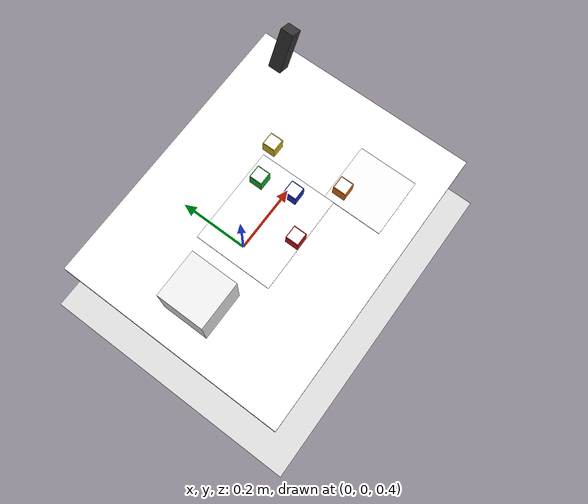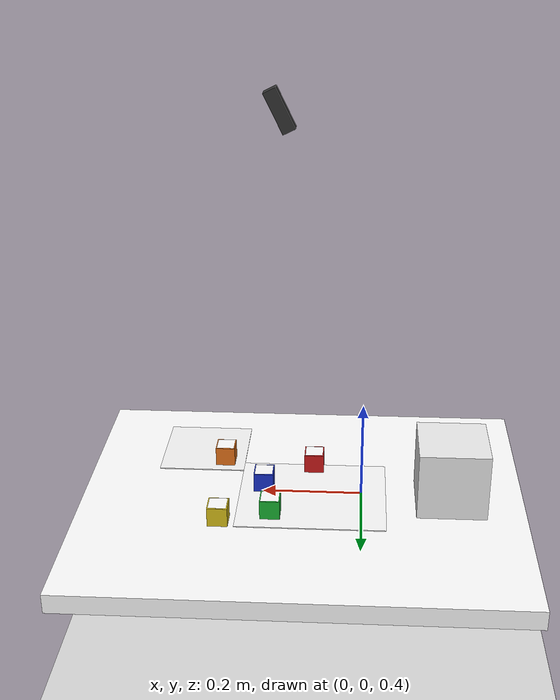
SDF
<?xml version="1.0" ?>
<sdf version="1.9">
  <world name="mycobot_pick_world">
    <physics name="physics" type="ignored">
      <max_step_size>0.004</max_step_size>
      <real_time_factor>1.0</real_time_factor>
    </physics>

    <plugin filename="gz-sim-physics-system" name="gz::sim::systems::Physics"/>
    <plugin filename="gz-sim-user-commands-system" name="gz::sim::systems::UserCommands"/>
    <plugin filename="gz-sim-scene-broadcaster-system" name="gz::sim::systems::SceneBroadcaster"/>
    <plugin filename="gz-sim-sensors-system" name="gz::sim::systems::Sensors">
      <render_engine>ogre2</render_engine>
    </plugin>

    <light type="directional" name="sun">
      <cast_shadows>true</cast_shadows>
      <pose>0 0 10 0 0 0</pose>
      <diffuse>0.95 0.95 0.95 1.0</diffuse>
      <specular>0.3 0.3 0.3 1.0</specular>
      <direction>-0.3 0.1 -1.0</direction>
    </light>

    <model name="ground_plane">
      <static>true</static>
      <link name="link">
        <collision name="collision">
          <geometry>
            <plane>
              <normal>0 0 1</normal>
              <size>5 5</size>
            </plane>
          </geometry>
        </collision>
        <visual name="visual">
          <geometry>
            <plane>
              <normal>0 0 1</normal>
              <size>5 5</size>
            </plane>
          </geometry>
          <material>
            <ambient>0.85 0.85 0.85 1</ambient>
            <diffuse>0.85 0.85 0.85 1</diffuse>
          </material>
        </visual>
      </link>
    </model>

    <model name="workbench">
      <static>true</static>
      <pose>0.12 0.0 0.37 0 0 0</pose>
      <link name="table_link">
        <collision name="table_collision">
          <geometry>
            <box>
              <size>0.90 0.70 0.04</size>
            </box>
          </geometry>
        </collision>
        <visual name="table_visual">
          <geometry>
            <box>
              <size>0.90 0.70 0.04</size>
            </box>
          </geometry>
          <material>
            <ambient>1 1 1 1</ambient>
            <diffuse>1 1 1 1</diffuse>
          </material>
        </visual>
      </link>
    </model>

    <model name="robot_pedestal">
      <static>true</static>
      <pose>-0.18 0.0 0.44 0 0 0</pose>
      <link name="pedestal_link">
        <collision name="pedestal_collision">
          <geometry>
            <box>
              <size>0.14 0.14 0.18</size>
            </box>
          </geometry>
        </collision>
        <visual name="pedestal_visual">
          <geometry>
            <box>
              <size>0.14 0.14 0.18</size>
            </box>
          </geometry>
          <material>
            <ambient>0.92 0.92 0.92 1</ambient>
            <diffuse>0.92 0.92 0.92 1</diffuse>
          </material>
        </visual>
      </link>
    </model>

    <model name="pick_zone">
      <static>true</static>
      <pose>0.10 0.0 0.391 0 0 0</pose>
      <link name="pick_zone_link">
        <visual name="pick_zone_visual">
          <geometry>
            <box>
              <size>0.30 0.24 0.002</size>
            </box>
          </geometry>
          <material>
            <ambient>0.98 0.98 0.98 1</ambient>
            <diffuse>0.98 0.98 0.98 1</diffuse>
          </material>
        </visual>
      </link>
    </model>

    <model name="place_zone">
      <static>true</static>
      <pose>0.34 -0.18 0.391 0 0 0</pose>
      <link name="place_zone_link">
        <visual name="place_zone_visual">
          <geometry>
            <box>
              <size>0.18 0.18 0.002</size>
            </box>
          </geometry>
          <material>
            <ambient>0.96 0.96 0.96 1</ambient>
            <diffuse>0.96 0.96 0.96 1</diffuse>
          </material>
        </visual>
      </link>
    </model>

    <model name="realsense_camera">
      <static>true</static>
      <pose>0.16 0.0 1.18 0 1.12 3.14159</pose>
      <link name="camera_link">
        <sensor name="realsense_rgbd" type="rgbd_camera">
          <update_rate>20</update_rate>
          <always_on>true</always_on>
          <topic>realsense_rgbd</topic>
          <camera>
            <horizontal_fov>1.05</horizontal_fov>
            <image>
              <width>640</width>
              <height>480</height>
              <format>R8G8B8</format>
            </image>
            <clip>
              <near>0.05</near>
              <far>2.0</far>
            </clip>
          </camera>
        </sensor>
        <visual name="camera_body">
          <geometry>
            <box>
              <size>0.08 0.025 0.025</size>
            </box>
          </geometry>
          <material>
            <ambient>0.2 0.2 0.2 1</ambient>
            <diffuse>0.2 0.2 0.2 1</diffuse>
          </material>
        </visual>
      </link>
    </model>

    <model name="red_block">
      <pose>0.10 -0.10 0.417 0 0 0</pose>
      <link name="link">
        <inertial>
          <mass>0.02</mass>
          <inertia>
            <ixx>0.00001</ixx><ixy>0</ixy><ixz>0</ixz>
            <iyy>0.00001</iyy><iyz>0</iyz><izz>0.00001</izz>
          </inertia>
        </inertial>
        <collision name="collision">
          <geometry><box><size>0.04 0.04 0.04</size></box></geometry>
        </collision>
        <visual name="visual">
          <geometry><box><size>0.04 0.04 0.04</size></box></geometry>
          <material><ambient>0.8 0.1 0.1 1</ambient><diffuse>0.8 0.1 0.1 1</diffuse></material>
        </visual>
        <visual name="marker_visual">
          <pose>0 0 0.0206 0 0 0</pose>
          <cast_shadows>false</cast_shadows>
          <geometry>
            <plane>
              <normal>0 0 1</normal>
              <size>0.036 0.036</size>
            </plane>
          </geometry>
          <material>
            <ambient>1 1 1 1</ambient>
            <diffuse>1 1 1 1</diffuse>
            <pbr>
              <metal>
                <albedo_map>aruco_marker_0.png</albedo_map>
                <roughness>1.0</roughness>
                <metalness>0.0</metalness>
              </metal>
            </pbr>
          </material>
        </visual>
      </link>
    </model>
    <model name="green_block">
      <pose>0.18 0.08 0.417 0 0 0</pose>
      <link name="link">
        <inertial>
          <mass>0.02</mass>
          <inertia>
            <ixx>0.00001</ixx><ixy>0</ixy><ixz>0</ixz>
            <iyy>0.00001</iyy><iyz>0</iyz><izz>0.00001</izz>
          </inertia>
        </inertial>
        <collision name="collision">
          <geometry><box><size>0.04 0.04 0.04</size></box></geometry>
        </collision>
        <visual name="visual">
          <geometry><box><size>0.04 0.04 0.04</size></box></geometry>
          <material><ambient>0.1 0.7 0.2 1</ambient><diffuse>0.1 0.7 0.2 1</diffuse></material>
        </visual>
        <visual name="marker_visual">
          <pose>0 0 0.0206 0 0 0</pose>
          <cast_shadows>false</cast_shadows>
          <geometry>
            <plane>
              <normal>0 0 1</normal>
              <size>0.036 0.036</size>
            </plane>
          </geometry>
          <material>
            <ambient>1 1 1 1</ambient>
            <diffuse>1 1 1 1</diffuse>
            <pbr>
              <metal>
                <albedo_map>aruco_marker_1.png</albedo_map>
                <roughness>1.0</roughness>
                <metalness>0.0</metalness>
              </metal>
            </pbr>
          </material>
        </visual>
      </link>
    </model>
    <model name="blue_block">
      <pose>0.20 -0.02 0.417 0 0 0</pose>
      <link name="link">
        <inertial>
          <mass>0.02</mass>
          <inertia>
            <ixx>0.00001</ixx><ixy>0</ixy><ixz>0</ixz>
            <iyy>0.00001</iyy><iyz>0</iyz><izz>0.00001</izz>
          </inertia>
        </inertial>
        <collision name="collision">
          <geometry><box><size>0.04 0.04 0.04</size></box></geometry>
        </collision>
        <visual name="visual">
          <geometry><box><size>0.04 0.04 0.04</size></box></geometry>
          <material><ambient>0.1 0.2 0.8 1</ambient><diffuse>0.1 0.2 0.8 1</diffuse></material>
        </visual>
        <visual name="marker_visual">
          <pose>0 0 0.0206 0 0 0</pose>
          <cast_shadows>false</cast_shadows>
          <geometry>
            <plane>
              <normal>0 0 1</normal>
              <size>0.036 0.036</size>
            </plane>
          </geometry>
          <material>
            <ambient>1 1 1 1</ambient>
            <diffuse>1 1 1 1</diffuse>
            <pbr>
              <metal>
                <albedo_map>aruco_marker_2.png</albedo_map>
                <roughness>1.0</roughness>
                <metalness>0.0</metalness>
              </metal>
            </pbr>
          </material>
        </visual>
      </link>
    </model>
    <model name="yellow_block">
      <pose>0.28 0.11 0.417 0 0 0</pose>
      <link name="link">
        <inertial>
          <mass>0.02</mass>
          <inertia>
            <ixx>0.00001</ixx><ixy>0</ixy><ixz>0</ixz>
            <iyy>0.00001</iyy><iyz>0</iyz><izz>0.00001</izz>
          </inertia>
        </inertial>
        <collision name="collision">
          <geometry><box><size>0.04 0.04 0.04</size></box></geometry>
        </collision>
        <visual name="visual">
          <geometry><box><size>0.04 0.04 0.04</size></box></geometry>
          <material><ambient>0.85 0.75 0.1 1</ambient><diffuse>0.85 0.75 0.1 1</diffuse></material>
        </visual>
        <visual name="marker_visual">
          <pose>0 0 0.0206 0 0 0</pose>
          <cast_shadows>false</cast_shadows>
          <geometry>
            <plane>
              <normal>0 0 1</normal>
              <size>0.036 0.036</size>
            </plane>
          </geometry>
          <material>
            <ambient>1 1 1 1</ambient>
            <diffuse>1 1 1 1</diffuse>
            <pbr>
              <metal>
                <albedo_map>aruco_marker_3.png</albedo_map>
                <roughness>1.0</roughness>
                <metalness>0.0</metalness>
              </metal>
            </pbr>
          </material>
        </visual>
      </link>
    </model>
    <model name="orange_block">
      <pose>0.29 -0.12 0.417 0 0 0</pose>
      <link name="link">
        <inertial>
          <mass>0.02</mass>
          <inertia>
            <ixx>0.00001</ixx><ixy>0</ixy><ixz>0</ixz>
            <iyy>0.00001</iyy><iyz>0</iyz><izz>0.00001</izz>
          </inertia>
        </inertial>
        <collision name="collision">
          <geometry><box><size>0.04 0.04 0.04</size></box></geometry>
        </collision>
        <visual name="visual">
          <geometry><box><size>0.04 0.04 0.04</size></box></geometry>
          <material><ambient>0.9 0.45 0.1 1</ambient><diffuse>0.9 0.45 0.1 1</diffuse></material>
        </visual>
        <visual name="marker_visual">
          <pose>0 0 0.0206 0 0 0</pose>
          <cast_shadows>false</cast_shadows>
          <geometry>
            <plane>
              <normal>0 0 1</normal>
              <size>0.036 0.036</size>
            </plane>
          </geometry>
          <material>
            <ambient>1 1 1 1</ambient>
            <diffuse>1 1 1 1</diffuse>
            <pbr>
              <metal>
                <albedo_map>aruco_marker_4.png</albedo_map>
                <roughness>1.0</roughness>
                <metalness>0.0</metalness>
              </metal>
            </pbr>
          </material>
        </visual>
      </link>
    </model>
  </world>
</sdf>
